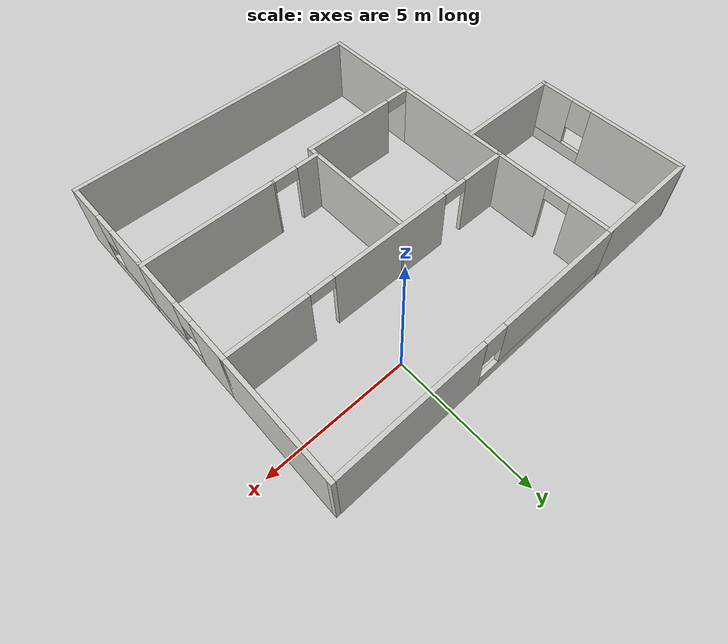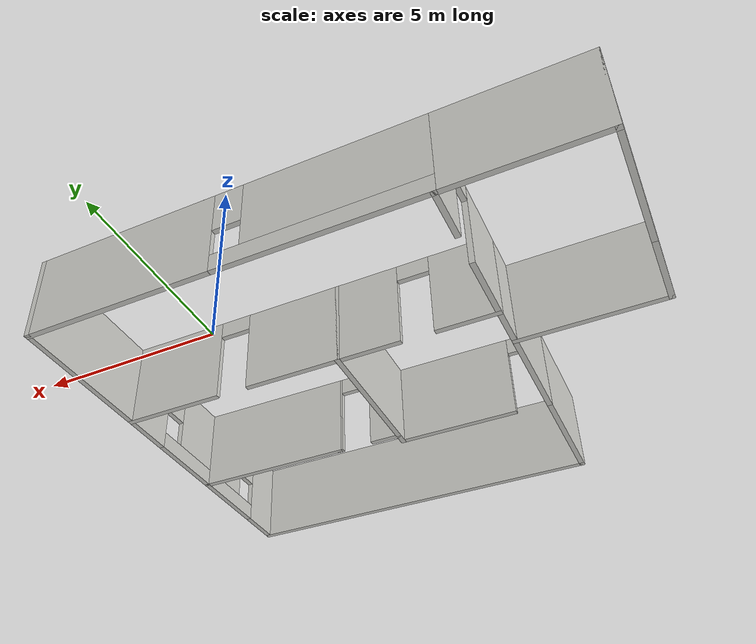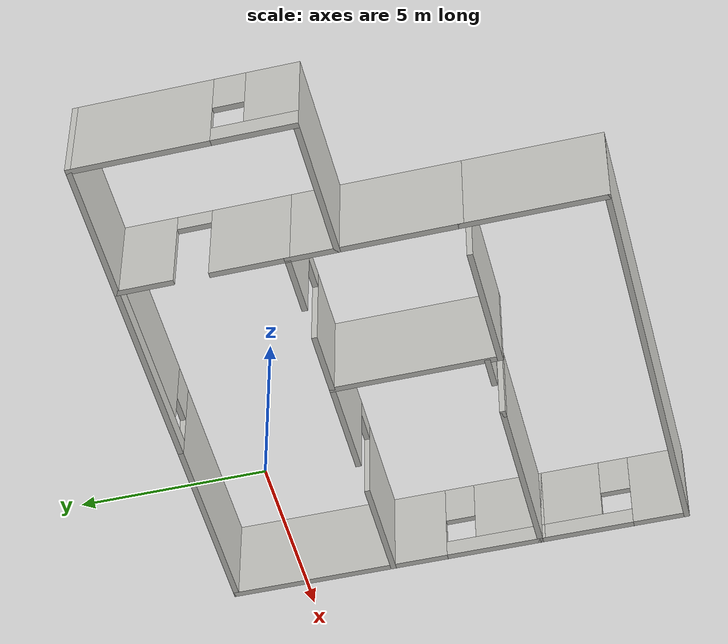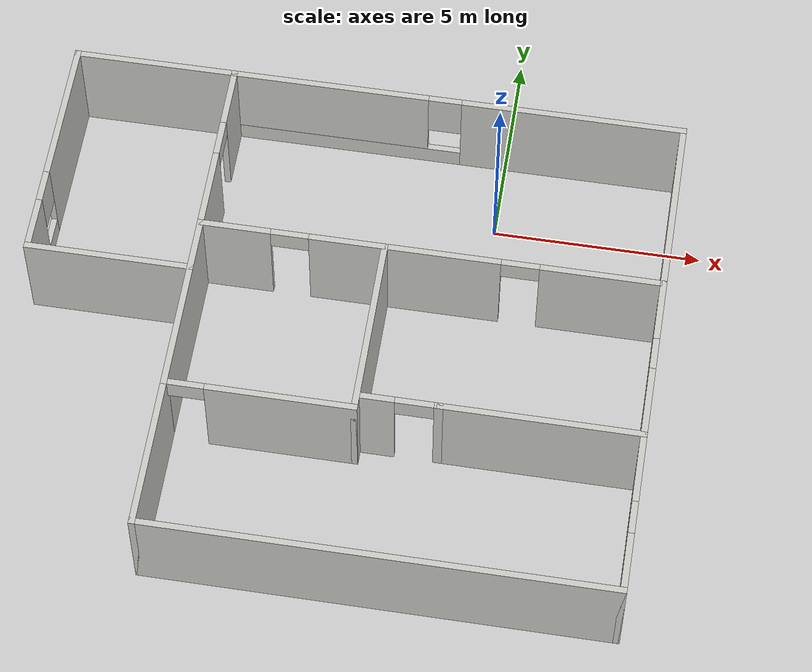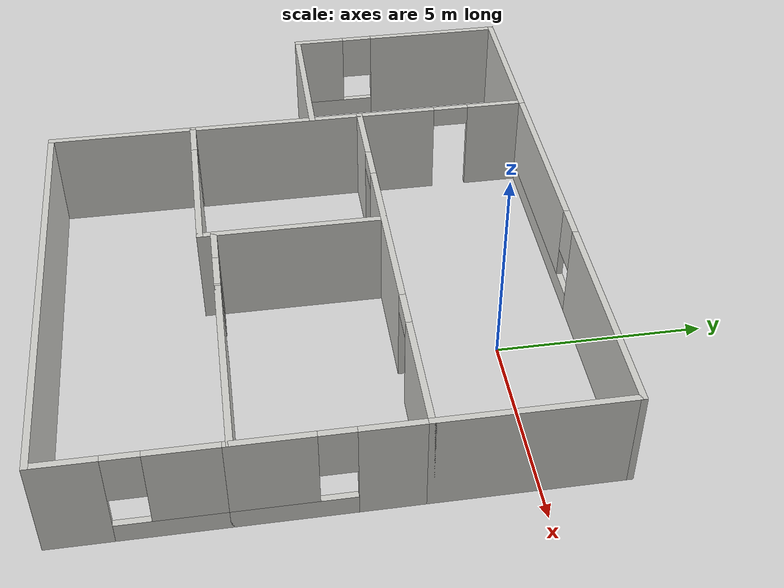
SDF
<?xml version='1.0'?>
<sdf version='1.7'>
  <model name='map_ver3'>
    <pose>-3.15287 -4.18253 0 0 -0 0</pose>
    <link name='Wall_10'>
      <pose>-1.325 -2.55 0 0 -0 0</pose>
      <visual name='Wall_10_Visual_0'>
        <pose>-2.20279 0 1.25 0 -0 0</pose>
        <geometry>
          <box>
            <size>0.094427 0.15 2.5</size>
          </box>
        </geometry>
        <material>
          <script>
            <uri>file://media/materials/scripts/gazebo.material</uri>
            <name>Gazebo/CeilingTiled</name>
          </script>
          <ambient>0.807843 0.360784 0 1</ambient>
        </material>
        <meta>
          <layer>0</layer>
        </meta>
      </visual>
      <collision name='Wall_10_Collision_0'>
        <geometry>
          <box>
            <size>0.094427 0.15 2.5</size>
          </box>
        </geometry>
        <pose>-2.20279 0 1.25 0 -0 0</pose>
      </collision>
      <visual name='Wall_10_Visual_1'>
        <pose>0.497213 0 1.25 0 -0 0</pose>
        <geometry>
          <box>
            <size>3.50557 0.15 2.5</size>
          </box>
        </geometry>
        <material>
          <script>
            <uri>file://media/materials/scripts/gazebo.material</uri>
            <name>Gazebo/CeilingTiled</name>
          </script>
          <ambient>0.807843 0.360784 0 1</ambient>
        </material>
        <meta>
          <layer>0</layer>
        </meta>
      </visual>
      <collision name='Wall_10_Collision_1'>
        <geometry>
          <box>
            <size>3.50557 0.15 2.5</size>
          </box>
        </geometry>
        <pose>0.497213 0 1.25 0 -0 0</pose>
      </collision>
      <visual name='Wall_10_Visual_2'>
        <pose>-1.70557 0 2.25 0 -0 0</pose>
        <geometry>
          <box>
            <size>0.9 0.15 0.5</size>
          </box>
        </geometry>
        <material>
          <script>
            <uri>file://media/materials/scripts/gazebo.material</uri>
            <name>Gazebo/CeilingTiled</name>
          </script>
          <ambient>0.807843 0.360784 0 1</ambient>
        </material>
        <meta>
          <layer>0</layer>
        </meta>
      </visual>
      <collision name='Wall_10_Collision_2'>
        <geometry>
          <box>
            <size>0.9 0.15 0.5</size>
          </box>
        </geometry>
        <pose>-1.70557 0 2.25 0 -0 0</pose>
      </collision>
    </link>
    <link name='Wall_11'>
      <collision name='Wall_11_Collision'>
        <geometry>
          <box>
            <size>4.5 0.15 2.5</size>
          </box>
        </geometry>
        <pose>0 0 1.25 0 -0 0</pose>
      </collision>
      <visual name='Wall_11_Visual'>
        <pose>0 0 1.25 0 -0 0</pose>
        <geometry>
          <box>
            <size>4.5 0.15 2.5</size>
          </box>
        </geometry>
        <material>
          <script>
            <uri>file://media/materials/scripts/gazebo.material</uri>
            <name>Gazebo/CeilingTiled</name>
          </script>
          <ambient>0 1 0 1</ambient>
        </material>
        <meta>
          <layer>0</layer>
        </meta>
      </visual>
      <pose>0.85 -0.375 0 0 -0 1.5708</pose>
    </link>
    <link name='Wall_15'>
      <collision name='Wall_15_Collision'>
        <geometry>
          <box>
            <size>4.75 0.15 2.5</size>
          </box>
        </geometry>
        <pose>0 0 1.25 0 -0 0</pose>
      </collision>
      <visual name='Wall_15_Visual'>
        <pose>0 0 1.25 0 -0 0</pose>
        <geometry>
          <box>
            <size>4.75 0.15 2.5</size>
          </box>
        </geometry>
        <material>
          <script>
            <uri>file://media/materials/scripts/gazebo.material</uri>
            <name>Gazebo/CeilingTiled</name>
          </script>
          <ambient>0.807843 0.360784 0 1</ambient>
        </material>
        <meta>
          <layer>0</layer>
        </meta>
      </visual>
      <pose>5.04948 -2.22474 0 0 -0 0</pose>
    </link>
    <link name='Wall_17'>
      <pose>7.35 -0.25 0 0 -0 -1.5708</pose>
      <visual name='Wall_17_Visual_0'>
        <pose>-1.33846 0 1.25 0 -0 0</pose>
        <geometry>
          <box>
            <size>1.57308 0.15 2.5</size>
          </box>
        </geometry>
        <material>
          <script>
            <uri>file://media/materials/scripts/gazebo.material</uri>
            <name>Gazebo/CeilingTiled</name>
          </script>
          <ambient>0 1 0 1</ambient>
        </material>
        <meta>
          <layer>0</layer>
        </meta>
      </visual>
      <collision name='Wall_17_Collision_0'>
        <geometry>
          <box>
            <size>1.57308 0.15 2.5</size>
          </box>
        </geometry>
        <pose>-1.33846 0 1.25 0 -0 0</pose>
      </collision>
      <visual name='Wall_17_Visual_1'>
        <pose>0.786542 0 0.25 0 -0 0</pose>
        <geometry>
          <box>
            <size>2.67692 0.15 0.5</size>
          </box>
        </geometry>
        <material>
          <script>
            <uri>file://media/materials/scripts/gazebo.material</uri>
            <name>Gazebo/CeilingTiled</name>
          </script>
          <ambient>0 1 0 1</ambient>
        </material>
        <meta>
          <layer>0</layer>
        </meta>
      </visual>
      <collision name='Wall_17_Collision_1'>
        <geometry>
          <box>
            <size>2.67692 0.15 0.5</size>
          </box>
        </geometry>
        <pose>0.786542 0 0.25 0 -0 0</pose>
      </collision>
      <visual name='Wall_17_Visual_2'>
        <pose>1.18654 0 1.5 0 -0 0</pose>
        <geometry>
          <box>
            <size>1.87692 0.15 2</size>
          </box>
        </geometry>
        <material>
          <script>
            <uri>file://media/materials/scripts/gazebo.material</uri>
            <name>Gazebo/CeilingTiled</name>
          </script>
          <ambient>0 1 0 1</ambient>
        </material>
        <meta>
          <layer>0</layer>
        </meta>
      </visual>
      <collision name='Wall_17_Collision_2'>
        <geometry>
          <box>
            <size>1.87692 0.15 2</size>
          </box>
        </geometry>
        <pose>1.18654 0 1.5 0 -0 0</pose>
      </collision>
      <visual name='Wall_17_Visual_3'>
        <pose>-0.151917 0 1.9 0 -0 0</pose>
        <geometry>
          <box>
            <size>0.8 0.15 1.2</size>
          </box>
        </geometry>
        <material>
          <script>
            <uri>file://media/materials/scripts/gazebo.material</uri>
            <name>Gazebo/CeilingTiled</name>
          </script>
          <ambient>0 1 0 1</ambient>
        </material>
        <meta>
          <layer>0</layer>
        </meta>
      </visual>
      <collision name='Wall_17_Collision_3'>
        <geometry>
          <box>
            <size>0.8 0.15 1.2</size>
          </box>
        </geometry>
        <pose>-0.151917 0 1.9 0 -0 0</pose>
      </collision>
    </link>
    <link name='Wall_19'>
      <collision name='Wall_19_Collision'>
        <geometry>
          <box>
            <size>4 0.15 2.5</size>
          </box>
        </geometry>
        <pose>0 0 1.25 0 -0 0</pose>
      </collision>
      <visual name='Wall_19_Visual'>
        <pose>0 0 1.25 0 -0 0</pose>
        <geometry>
          <box>
            <size>4 0.15 2.5</size>
          </box>
        </geometry>
        <material>
          <script>
            <uri>file://media/materials/scripts/gazebo.material</uri>
            <name>Gazebo/CeilingTiled</name>
          </script>
          <ambient>0.12549 0.290196 0.529412 1</ambient>
        </material>
        <meta>
          <layer>0</layer>
        </meta>
      </visual>
      <pose>-5.425 6.15 0 0 -0 3.14159</pose>
    </link>
    <link name='Wall_20'>
      <pose>-7.35 3.35 0 0 -0 -1.5708</pose>
      <visual name='Wall_20_Visual_0'>
        <pose>-1.07712 0 1.25 0 -0 0</pose>
        <geometry>
          <box>
            <size>3.59577 0.15 2.5</size>
          </box>
        </geometry>
        <material>
          <script>
            <uri>file://media/materials/scripts/gazebo.material</uri>
            <name>Gazebo/CeilingTiled</name>
          </script>
          <ambient>0.12549 0.290196 0.529412 1</ambient>
        </material>
        <meta>
          <layer>0</layer>
        </meta>
      </visual>
      <collision name='Wall_20_Collision_0'>
        <geometry>
          <box>
            <size>3.59577 0.15 2.5</size>
          </box>
        </geometry>
        <pose>-1.07712 0 1.25 0 -0 0</pose>
      </collision>
      <visual name='Wall_20_Visual_1'>
        <pose>1.79788 0 0.25 0 -0 0</pose>
        <geometry>
          <box>
            <size>2.15423 0.15 0.5</size>
          </box>
        </geometry>
        <material>
          <script>
            <uri>file://media/materials/scripts/gazebo.material</uri>
            <name>Gazebo/CeilingTiled</name>
          </script>
          <ambient>0.12549 0.290196 0.529412 1</ambient>
        </material>
        <meta>
          <layer>0</layer>
        </meta>
      </visual>
      <collision name='Wall_20_Collision_1'>
        <geometry>
          <box>
            <size>2.15423 0.15 0.5</size>
          </box>
        </geometry>
        <pose>1.79788 0 0.25 0 -0 0</pose>
      </collision>
      <visual name='Wall_20_Visual_2'>
        <pose>2.19788 0 1.5 0 -0 0</pose>
        <geometry>
          <box>
            <size>1.35423 0.15 2</size>
          </box>
        </geometry>
        <material>
          <script>
            <uri>file://media/materials/scripts/gazebo.material</uri>
            <name>Gazebo/CeilingTiled</name>
          </script>
          <ambient>0.12549 0.290196 0.529412 1</ambient>
        </material>
        <meta>
          <layer>0</layer>
        </meta>
      </visual>
      <collision name='Wall_20_Collision_2'>
        <geometry>
          <box>
            <size>1.35423 0.15 2</size>
          </box>
        </geometry>
        <pose>2.19788 0 1.5 0 -0 0</pose>
      </collision>
      <visual name='Wall_20_Visual_3'>
        <pose>1.12077 0 1.9 0 -0 0</pose>
        <geometry>
          <box>
            <size>0.8 0.15 1.2</size>
          </box>
        </geometry>
        <material>
          <script>
            <uri>file://media/materials/scripts/gazebo.material</uri>
            <name>Gazebo/CeilingTiled</name>
          </script>
          <ambient>0.12549 0.290196 0.529412 1</ambient>
        </material>
        <meta>
          <layer>0</layer>
        </meta>
      </visual>
      <collision name='Wall_20_Collision_3'>
        <geometry>
          <box>
            <size>0.8 0.15 1.2</size>
          </box>
        </geometry>
        <pose>1.12077 0 1.9 0 -0 0</pose>
      </collision>
    </link>
    <link name='Wall_21'>
      <collision name='Wall_21_Collision'>
        <geometry>
          <box>
            <size>4 0.15 2.5</size>
          </box>
        </geometry>
        <pose>0 0 1.25 0 -0 0</pose>
      </collision>
      <visual name='Wall_21_Visual'>
        <pose>0 0 1.25 0 -0 0</pose>
        <geometry>
          <box>
            <size>4 0.15 2.5</size>
          </box>
        </geometry>
        <material>
          <script>
            <uri>file://media/materials/scripts/gazebo.material</uri>
            <name>Gazebo/CeilingTiled</name>
          </script>
          <ambient>0.12549 0.290196 0.529412 1</ambient>
        </material>
        <meta>
          <layer>0</layer>
        </meta>
      </visual>
      <pose>-5.425 0.55 0 0 -0 0</pose>
    </link>
    <link name='Wall_23'>
      <collision name='Wall_23_Collision'>
        <geometry>
          <box>
            <size>3.75 0.15 2.5</size>
          </box>
        </geometry>
        <pose>0 0 1.25 0 -0 0</pose>
      </collision>
      <visual name='Wall_23_Visual'>
        <pose>0 0 1.25 0 -0 0</pose>
        <geometry>
          <box>
            <size>3.75 0.15 2.5</size>
          </box>
        </geometry>
        <material>
          <script>
            <uri>file://media/materials/scripts/gazebo.material</uri>
            <name>Gazebo/CeilingTiled</name>
          </script>
          <ambient>0.807843 0.360784 0 1</ambient>
        </material>
        <meta>
          <layer>0</layer>
        </meta>
      </visual>
      <pose>-3.5 -4.35 0 0 -0 -1.5708</pose>
    </link>
    <link name='Wall_24'>
      <collision name='Wall_24_Collision'>
        <geometry>
          <box>
            <size>11 0.15 2.5</size>
          </box>
        </geometry>
        <pose>0 0 1.25 0 -0 0</pose>
      </collision>
      <visual name='Wall_24_Visual'>
        <pose>0 0 1.25 0 -0 0</pose>
        <geometry>
          <box>
            <size>11 0.15 2.5</size>
          </box>
        </geometry>
        <material>
          <script>
            <uri>file://media/materials/scripts/gazebo.material</uri>
            <name>Gazebo/CeilingTiled</name>
          </script>
          <ambient>0.807843 0.360784 0 1</ambient>
        </material>
        <meta>
          <layer>0</layer>
        </meta>
      </visual>
      <pose>1.925 -6.15 0 0 -0 0</pose>
    </link>
    <link name='Wall_25'>
      <pose>7.35 -4.225 0 0 -0 1.5708</pose>
      <visual name='Wall_25_Visual_0'>
        <pose>-1.25867 0 1.25 0 -0 0</pose>
        <geometry>
          <box>
            <size>1.48266 0.15 2.5</size>
          </box>
        </geometry>
        <material>
          <script>
            <uri>file://media/materials/scripts/gazebo.material</uri>
            <name>Gazebo/CeilingTiled</name>
          </script>
          <ambient>0.807843 0.360784 0 1</ambient>
        </material>
        <meta>
          <layer>0</layer>
        </meta>
      </visual>
      <collision name='Wall_25_Collision_0'>
        <geometry>
          <box>
            <size>1.48266 0.15 2.5</size>
          </box>
        </geometry>
        <pose>-1.25867 0 1.25 0 -0 0</pose>
      </collision>
      <visual name='Wall_25_Visual_1'>
        <pose>0.741331 0 0.25 0 -0 0</pose>
        <geometry>
          <box>
            <size>2.51734 0.15 0.5</size>
          </box>
        </geometry>
        <material>
          <script>
            <uri>file://media/materials/scripts/gazebo.material</uri>
            <name>Gazebo/CeilingTiled</name>
          </script>
          <ambient>0.807843 0.360784 0 1</ambient>
        </material>
        <meta>
          <layer>0</layer>
        </meta>
      </visual>
      <collision name='Wall_25_Collision_1'>
        <geometry>
          <box>
            <size>2.51734 0.15 0.5</size>
          </box>
        </geometry>
        <pose>0.741331 0 0.25 0 -0 0</pose>
      </collision>
      <visual name='Wall_25_Visual_2'>
        <pose>1.14133 0 1.5 0 -0 0</pose>
        <geometry>
          <box>
            <size>1.71734 0.15 2</size>
          </box>
        </geometry>
        <material>
          <script>
            <uri>file://media/materials/scripts/gazebo.material</uri>
            <name>Gazebo/CeilingTiled</name>
          </script>
          <ambient>0.807843 0.360784 0 1</ambient>
        </material>
        <meta>
          <layer>0</layer>
        </meta>
      </visual>
      <collision name='Wall_25_Collision_2'>
        <geometry>
          <box>
            <size>1.71734 0.15 2</size>
          </box>
        </geometry>
        <pose>1.14133 0 1.5 0 -0 0</pose>
      </collision>
      <visual name='Wall_25_Visual_3'>
        <pose>-0.117338 0 1.9 0 -0 0</pose>
        <geometry>
          <box>
            <size>0.8 0.15 1.2</size>
          </box>
        </geometry>
        <material>
          <script>
            <uri>file://media/materials/scripts/gazebo.material</uri>
            <name>Gazebo/CeilingTiled</name>
          </script>
          <ambient>0.807843 0.360784 0 1</ambient>
        </material>
        <meta>
          <layer>0</layer>
        </meta>
      </visual>
      <collision name='Wall_25_Collision_3'>
        <geometry>
          <box>
            <size>0.8 0.15 1.2</size>
          </box>
        </geometry>
        <pose>-0.117338 0 1.9 0 -0 0</pose>
      </collision>
    </link>
    <link name='Wall_27'>
      <pose>1.925 1.8 0 0 -0 0</pose>
      <visual name='Wall_27_Visual_0'>
        <pose>-4.62964 0 1.25 0 -0 0</pose>
        <geometry>
          <box>
            <size>1.74072 0.15 2.5</size>
          </box>
        </geometry>
        <material>
          <script>
            <uri>file://media/materials/scripts/gazebo.material</uri>
            <name>Gazebo/CeilingTiled</name>
          </script>
          <ambient>0.8 0 0 1</ambient>
        </material>
        <meta>
          <layer>0</layer>
        </meta>
      </visual>
      <collision name='Wall_27_Collision_0'>
        <geometry>
          <box>
            <size>1.74072 0.15 2.5</size>
          </box>
        </geometry>
        <pose>-4.62964 0 1.25 0 -0 0</pose>
      </collision>
      <visual name='Wall_27_Visual_1'>
        <pose>-0.60253 0 1.25 0 -0 0</pose>
        <geometry>
          <box>
            <size>4.51349 0.15 2.5</size>
          </box>
        </geometry>
        <material>
          <script>
            <uri>file://media/materials/scripts/gazebo.material</uri>
            <name>Gazebo/CeilingTiled</name>
          </script>
          <ambient>0.8 0 0 1</ambient>
        </material>
        <meta>
          <layer>0</layer>
        </meta>
      </visual>
      <collision name='Wall_27_Collision_1'>
        <geometry>
          <box>
            <size>4.51349 0.15 2.5</size>
          </box>
        </geometry>
        <pose>-0.60253 0 1.25 0 -0 0</pose>
      </collision>
      <visual name='Wall_27_Visual_2'>
        <pose>4.02711 0 1.25 0 -0 0</pose>
        <geometry>
          <box>
            <size>2.94578 0.15 2.5</size>
          </box>
        </geometry>
        <material>
          <script>
            <uri>file://media/materials/scripts/gazebo.material</uri>
            <name>Gazebo/CeilingTiled</name>
          </script>
          <ambient>0.8 0 0 1</ambient>
        </material>
        <meta>
          <layer>0</layer>
        </meta>
      </visual>
      <collision name='Wall_27_Collision_2'>
        <geometry>
          <box>
            <size>2.94578 0.15 2.5</size>
          </box>
        </geometry>
        <pose>4.02711 0 1.25 0 -0 0</pose>
      </collision>
      <visual name='Wall_27_Visual_3'>
        <pose>-3.30928 0 2.25 0 -0 0</pose>
        <geometry>
          <box>
            <size>0.9 0.15 0.5</size>
          </box>
        </geometry>
        <material>
          <script>
            <uri>file://media/materials/scripts/gazebo.material</uri>
            <name>Gazebo/CeilingTiled</name>
          </script>
          <ambient>0.8 0 0 1</ambient>
        </material>
        <meta>
          <layer>0</layer>
        </meta>
      </visual>
      <collision name='Wall_27_Collision_3'>
        <geometry>
          <box>
            <size>0.9 0.15 0.5</size>
          </box>
        </geometry>
        <pose>-3.30928 0 2.25 0 -0 0</pose>
      </collision>
      <visual name='Wall_27_Visual_4'>
        <pose>2.10422 0 2.25 0 -0 0</pose>
        <geometry>
          <box>
            <size>0.9 0.15 0.5</size>
          </box>
        </geometry>
        <material>
          <script>
            <uri>file://media/materials/scripts/gazebo.material</uri>
            <name>Gazebo/CeilingTiled</name>
          </script>
          <ambient>0.8 0 0 1</ambient>
        </material>
        <meta>
          <layer>0</layer>
        </meta>
      </visual>
      <collision name='Wall_27_Collision_4'>
        <geometry>
          <box>
            <size>0.9 0.15 0.5</size>
          </box>
        </geometry>
        <pose>2.10422 0 2.25 0 -0 0</pose>
      </collision>
    </link>
    <link name='Wall_29'>
      <pose>1.82448 -2.22474 0 0 -0 3.14159</pose>
      <visual name='Wall_29_Visual_0'>
        <pose>-0.89605 0 1.25 0 -0 0</pose>
        <geometry>
          <box>
            <size>0.2079 0.15 2.5</size>
          </box>
        </geometry>
        <material>
          <script>
            <uri>file://media/materials/scripts/gazebo.material</uri>
            <name>Gazebo/CeilingTiled</name>
          </script>
          <ambient>0.807843 0.360784 0 1</ambient>
        </material>
        <meta>
          <layer>0</layer>
        </meta>
      </visual>
      <collision name='Wall_29_Collision_0'>
        <geometry>
          <box>
            <size>0.2079 0.15 2.5</size>
          </box>
        </geometry>
        <pose>-0.89605 0 1.25 0 -0 0</pose>
      </collision>
      <visual name='Wall_29_Visual_1'>
        <pose>0.55395 0 1.25 0 -0 0</pose>
        <geometry>
          <box>
            <size>0.8921 0.15 2.5</size>
          </box>
        </geometry>
        <material>
          <script>
            <uri>file://media/materials/scripts/gazebo.material</uri>
            <name>Gazebo/CeilingTiled</name>
          </script>
          <ambient>0.807843 0.360784 0 1</ambient>
        </material>
        <meta>
          <layer>0</layer>
        </meta>
      </visual>
      <collision name='Wall_29_Collision_1'>
        <geometry>
          <box>
            <size>0.8921 0.15 2.5</size>
          </box>
        </geometry>
        <pose>0.55395 0 1.25 0 -0 0</pose>
      </collision>
      <visual name='Wall_29_Visual_2'>
        <pose>-0.3421 0 2.25 0 -0 0</pose>
        <geometry>
          <box>
            <size>0.9 0.15 0.5</size>
          </box>
        </geometry>
        <material>
          <script>
            <uri>file://media/materials/scripts/gazebo.material</uri>
            <name>Gazebo/CeilingTiled</name>
          </script>
          <ambient>0.807843 0.360784 0 1</ambient>
        </material>
        <meta>
          <layer>0</layer>
        </meta>
      </visual>
      <collision name='Wall_29_Collision_2'>
        <geometry>
          <box>
            <size>0.9 0.15 0.5</size>
          </box>
        </geometry>
        <pose>-0.3421 0 2.25 0 -0 0</pose>
      </collision>
    </link>
    <link name='Wall_4'>
      <collision name='Wall_4_Collision'>
        <geometry>
          <box>
            <size>4.5 0.15 2.5</size>
          </box>
        </geometry>
        <pose>0 0 1.25 0 -0 0</pose>
      </collision>
      <visual name='Wall_4_Visual'>
        <pose>0 0 1.25 0 -0 0</pose>
        <geometry>
          <box>
            <size>4.5 0.15 2.5</size>
          </box>
        </geometry>
        <material>
          <script>
            <uri>file://media/materials/scripts/gazebo.material</uri>
            <name>Gazebo/CeilingTiled</name>
          </script>
          <ambient>0.8 0 0 1</ambient>
        </material>
        <meta>
          <layer>0</layer>
        </meta>
      </visual>
      <pose>7.35 3.975 0 0 -0 1.5708</pose>
    </link>
    <link name='Wall_5'>
      <pose>1.925 6.15 0 0 -0 3.14159</pose>
      <visual name='Wall_5_Visual_0'>
        <pose>-2.80283 0 1.25 0 -0 0</pose>
        <geometry>
          <box>
            <size>5.39435 0.15 2.5</size>
          </box>
        </geometry>
        <material>
          <script>
            <uri>file://media/materials/scripts/gazebo.material</uri>
            <name>Gazebo/CeilingTiled</name>
          </script>
          <ambient>0.8 0 0 1</ambient>
        </material>
        <meta>
          <layer>0</layer>
        </meta>
      </visual>
      <collision name='Wall_5_Collision_0'>
        <geometry>
          <box>
            <size>5.39435 0.15 2.5</size>
          </box>
        </geometry>
        <pose>-2.80283 0 1.25 0 -0 0</pose>
      </collision>
      <visual name='Wall_5_Visual_1'>
        <pose>2.69717 0 0.25 0 -0 0</pose>
        <geometry>
          <box>
            <size>5.60565 0.15 0.5</size>
          </box>
        </geometry>
        <material>
          <script>
            <uri>file://media/materials/scripts/gazebo.material</uri>
            <name>Gazebo/CeilingTiled</name>
          </script>
          <ambient>0.8 0 0 1</ambient>
        </material>
        <meta>
          <layer>0</layer>
        </meta>
      </visual>
      <collision name='Wall_5_Collision_1'>
        <geometry>
          <box>
            <size>5.60565 0.15 0.5</size>
          </box>
        </geometry>
        <pose>2.69717 0 0.25 0 -0 0</pose>
      </collision>
      <visual name='Wall_5_Visual_2'>
        <pose>3.09717 0 1.5 0 -0 0</pose>
        <geometry>
          <box>
            <size>4.80565 0.15 2</size>
          </box>
        </geometry>
        <material>
          <script>
            <uri>file://media/materials/scripts/gazebo.material</uri>
            <name>Gazebo/CeilingTiled</name>
          </script>
          <ambient>0.8 0 0 1</ambient>
        </material>
        <meta>
          <layer>0</layer>
        </meta>
      </visual>
      <collision name='Wall_5_Collision_2'>
        <geometry>
          <box>
            <size>4.80565 0.15 2</size>
          </box>
        </geometry>
        <pose>3.09717 0 1.5 0 -0 0</pose>
      </collision>
      <visual name='Wall_5_Visual_3'>
        <pose>0.294345 0 1.9 0 -0 0</pose>
        <geometry>
          <box>
            <size>0.8 0.15 1.2</size>
          </box>
        </geometry>
        <material>
          <script>
            <uri>file://media/materials/scripts/gazebo.material</uri>
            <name>Gazebo/CeilingTiled</name>
          </script>
          <ambient>0.8 0 0 1</ambient>
        </material>
        <meta>
          <layer>0</layer>
        </meta>
      </visual>
      <collision name='Wall_5_Collision_3'>
        <geometry>
          <box>
            <size>0.8 0.15 1.2</size>
          </box>
        </geometry>
        <pose>0.294345 0 1.9 0 -0 0</pose>
      </collision>
    </link>
    <link name='Wall_6'>
      <pose>-3.5 3.975 0 0 -0 -1.5708</pose>
      <visual name='Wall_6_Visual_0'>
        <pose>-1.47895 0 1.25 0 -0 0</pose>
        <geometry>
          <box>
            <size>1.5421 0.15 2.5</size>
          </box>
        </geometry>
        <material>
          <script>
            <uri>file://media/materials/scripts/gazebo.material</uri>
            <name>Gazebo/CeilingTiled</name>
          </script>
          <ambient>0.8 0 0 1</ambient>
        </material>
        <meta>
          <layer>0</layer>
        </meta>
      </visual>
      <collision name='Wall_6_Collision_0'>
        <geometry>
          <box>
            <size>1.5421 0.15 2.5</size>
          </box>
        </geometry>
        <pose>-1.47895 0 1.25 0 -0 0</pose>
      </collision>
      <visual name='Wall_6_Visual_1'>
        <pose>1.22105 0 1.25 0 -0 0</pose>
        <geometry>
          <box>
            <size>2.0579 0.15 2.5</size>
          </box>
        </geometry>
        <material>
          <script>
            <uri>file://media/materials/scripts/gazebo.material</uri>
            <name>Gazebo/CeilingTiled</name>
          </script>
          <ambient>0.8 0 0 1</ambient>
        </material>
        <meta>
          <layer>0</layer>
        </meta>
      </visual>
      <collision name='Wall_6_Collision_1'>
        <geometry>
          <box>
            <size>2.0579 0.15 2.5</size>
          </box>
        </geometry>
        <pose>1.22105 0 1.25 0 -0 0</pose>
      </collision>
      <visual name='Wall_6_Visual_2'>
        <pose>-0.257897 0 2.25 0 -0 0</pose>
        <geometry>
          <box>
            <size>0.9 0.15 0.5</size>
          </box>
        </geometry>
        <material>
          <script>
            <uri>file://media/materials/scripts/gazebo.material</uri>
            <name>Gazebo/CeilingTiled</name>
          </script>
          <ambient>0.8 0 0 1</ambient>
        </material>
        <meta>
          <layer>0</layer>
        </meta>
      </visual>
      <collision name='Wall_6_Collision_2'>
        <geometry>
          <box>
            <size>0.9 0.15 0.5</size>
          </box>
        </geometry>
        <pose>-0.257897 0 2.25 0 -0 0</pose>
      </collision>
    </link>
    <link name='Wall_9'>
      <collision name='Wall_9_Collision'>
        <geometry>
          <box>
            <size>4.5 0.15 2.5</size>
          </box>
        </geometry>
        <pose>0 0 1.25 0 -0 0</pose>
      </collision>
      <visual name='Wall_9_Visual'>
        <pose>0 0 1.25 0 -0 0</pose>
        <geometry>
          <box>
            <size>4.5 0.15 2.5</size>
          </box>
        </geometry>
        <material>
          <script>
            <uri>file://media/materials/scripts/gazebo.material</uri>
            <name>Gazebo/CeilingTiled</name>
          </script>
          <ambient>0.12549 0.290196 0.529412 1</ambient>
        </material>
        <meta>
          <layer>0</layer>
        </meta>
      </visual>
      <pose>-3.5 -0.375 0 0 -0 -1.5708</pose>
    </link>
    <static>1</static>
  </model>
</sdf>
